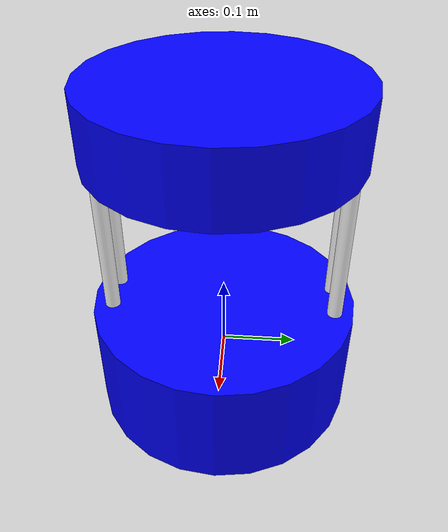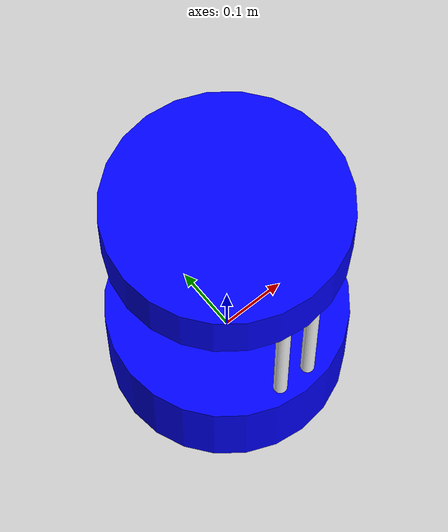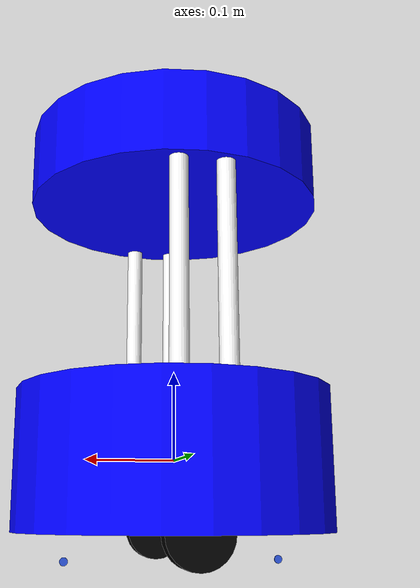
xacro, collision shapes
<?xml version="1.0"?>
<robot name="barista_robot" xmlns:xacro="http://ros.org/wiki/xacro">

<!-- Created with Liquid Technologies Online Tools 1.0 (https://www.liquid-technologies.com) -->

<!-- Include macro -->
<xacro:include filename="$(find barista_robot_description)/xacro/wheel.xacro" />
<xacro:include filename="$(find barista_robot_description)/xacro/standoff.xacro" />
<xacro:include filename="$(find barista_robot_description)/xacro/cup_holder_tray.xacro" />

<!-- Define the argument for including the laser -->
<xacro:arg name="include_laser" default="true" />
<xacro:arg name="robot_name" default="barista" />

<xacro:property name="robot_name" value="$(arg robot_name)"/>
<xacro:property name="robot_material" value="BlueMaterial"/>

<material name="BlueMaterial">
    <color rgba="0 0 1 1"/>
</material>
<material name="RedMaterial">
    <color rgba="1 0 0 1"/>
</material>

<xacro:property name="chassis_material" value="Gazebo/Blue"/>

<!-- Check if the robot is Rick and set color to Blue -->
<xacro:if value="${robot_name == 'rick'}">
  <xacro:property name="chassis_material" value="Gazebo/Blue"/>
  <xacro:property name="robot_material" value="BlueMaterial"/>
</xacro:if>

<!-- Check if the robot is Morty and set color to Red -->
<xacro:if value="${robot_name == 'morty'}">
  <xacro:property name="chassis_material" value="Gazebo/Red"/>
  <xacro:property name="robot_material" value="RedMaterial"/>
</xacro:if>

<!-- Lidar Sensor Macro Definition -->
<xacro:macro name="laser_scanner">
    <!-- Lidar plugin -->
    <gazebo reference="lidar">
        <material>Gazebo/Black</material>
        <sensor name="${robot_name}_sensor_ray" type="ray">
            <pose>0 0 0 0 0 0</pose>
            <ray>
                <scan>
                    <horizontal>
                        <samples>200</samples>
                        <resolution>1.0</resolution>
                        <min_angle>-3.14</min_angle>
                        <max_angle>3.14</max_angle>
                    </horizontal>
                </scan>
                <range>
                    <min>0.025</min>
                    <max>5.0</max>
                </range>
            </ray>
            <always_on>true</always_on>
            <visualize>true</visualize>
            <update_rate>100.0</update_rate>
            <plugin name="${robot_name}_laser" filename="libgazebo_ros_ray_sensor.so">
                <ros>
                    <namespace>${robot_name}</namespace>
                    <remapping>~/out:=/${robot_name}/scan</remapping>
                </ros>
                <frame_name>${robot_name}/base_link</frame_name>
                <output_type>sensor_msgs/LaserScan</output_type>
            </plugin>
        </sensor>
    </gazebo>
</xacro:macro>

<!-- Conditional inclusion of the laser scanner -->
<xacro:if value="$(arg include_laser)">
    <xacro:laser_scanner />
</xacro:if>

  <material name="black">
    <color rgba="0.0 0.0 0.0 1" />
  </material>

  <material name="white">
    <color rgba="1.0 1.0 1.0 1" />
  </material>

  <material name="blue_box">
    <color rgba="0.088656 0.428691 0.491021 1" />
  </material>

  <link name="base_link">
  </link>

  <!-- Body -->

  <link name="chassis">
    <visual>
      <geometry>
        <cylinder length="0.155" radius="0.178" />
      </geometry>
      <material name="${robot_material}" />
    </visual>
    <collision>
      <geometry>
        <cylinder length="0.155" radius="0.178" />
      </geometry>
    </collision>
    <inertial>
      <origin xyz="0 0 0" rpy="0 0 0" />
      <mass value="0.42857142857142855" />
      <inertia ixx="0.00425275" ixy="0.0" ixz="0.0" iyy="0.00425275" iyz="0.0" izz="0.00678942857142857" />
    </inertial>
  </link>

  <joint name="base_link_joint" type="fixed">
    <origin rpy="0 0 0" xyz="0 0 0" />
    <parent link="base_link" />
    <child link="chassis" />
  </joint>

  <gazebo reference="chassis">
      <material>${chassis_material}</material>
  </gazebo>

      <!-- Lidar Sensor -->
    <link name="lidar">
        <visual>
            <origin rpy="0 0 0" xyz="0.0 0 -0.05" />
            <geometry>
                <mesh filename="package://barista_robot_description/meshes/hokuyo_urg_04lx.dae"/>
            </geometry>
        </visual>
    </link>

    <joint name="lidar_joint" type="fixed">
        <origin rpy="0 0 0" xyz="-0.05 0 0.125" />
        <parent link="chassis" />
        <child link="lidar" />
    </joint>

  <!-- Front standoffs -->
  <xacro:standoff name="front_right_standoff" />

  <joint name="front_right_standoff_joint" type="fixed">
    <origin rpy="0 0 0" xyz="0.025 -0.15 0.1875" />
    <parent link="chassis" />
    <child link="front_right_standoff" />
  </joint>

  <xacro:standoff name="front_left_standoff" />

  <joint name="front_left_standoff_joint" type="fixed">
    <origin rpy="0 0 0" xyz="0.025 0.15 0.1875" />
    <parent link="chassis" />
    <child link="front_left_standoff" />
  </joint>

  <!-- Back standoffs -->

  <xacro:standoff name="back_right_standoff" />

  <joint name="back_right_standoff_joint" type="fixed">
    <origin rpy="0 0 0" xyz="-0.025 -0.15 0.1875" />
    <parent link="chassis" />
    <child link="back_right_standoff" />
  </joint>

  <xacro:standoff name="back_left_standoff" />

  <joint name="back_left_standoff_joint" type="fixed">
    <origin rpy="0 0 0" xyz="-0.025 0.15 0.1875" />
    <parent link="chassis" />
    <child link="back_left_standoff" />
  </joint>

  <!-- Cup holder tray -->

  <xacro:cup_holder_tray name="cup_holder" />

  <joint name="cup_holder_joint" type="fixed">
    <origin rpy="0 0 0" xyz="0.0 0.0 0.3425" />
    <parent link="chassis" />
    <child link="cup_holder" />
  </joint>

  <gazebo reference="cup_holder">
       <material>${chassis_material}</material>
  </gazebo>

  <!-- Wheel Left -->

  <xacro:wheel prefix="left" />

  <gazebo reference="left_wheel">
    <kp>1000000000000000000000000000.0</kp>
    <kd>1000000000000000000000000000.0</kd>
    <mu1>1.0</mu1>
    <mu2>1.0</mu2>
    <material>Gazebo/Black</material>
  </gazebo>

  <joint name="joint_left_wheel" type="continuous">
    <origin rpy="0 0 0" xyz="0 0.12 -0.0775" />
    <child link="left_wheel" />
    <parent link="chassis" />
    <axis rpy="0 0 0" xyz="0 1 0" />
    <limit effort="10000" velocity="1000" />
    <joint_properties damping="1.0" friction="1.0" />
  </joint>

  <!-- Wheel Right -->

  <xacro:wheel prefix="right" />

  <gazebo reference="right_wheel">
    <kp>1000000000000000000000000000.0</kp>
    <kd>1000000000000000000000000000.0</kd>
    <mu1>1.0</mu1>
    <mu2>1.0</mu2>
    <material>Gazebo/Black</material>
  </gazebo>

  <joint name="joint_right_wheel" type="continuous">
    <origin rpy="0 0 0" xyz="0 -0.12 -0.0775" />
    <child link="right_wheel" />
    <parent link="chassis" />
    <axis rpy="0 0 0" xyz="0 1 0" />
    <limit effort="10000" velocity="1000" />
    <joint_properties damping="1.0" friction="1.0" />
  </joint>

  <!-- Caster Wheel Front -->

  <link name="front_yaw_link">
    <visual>
      <origin rpy="0 1.5707 1.5707" xyz="0 0 0" />
      <geometry>
        <cylinder length="0.001" radius="0.0045000000000000005"/>
      </geometry>
      <material name="blue" />
    </visual>

    <collision>
      <origin rpy="0 1.5707 1.5707" xyz="0 0 0" />
      <geometry>
        <cylinder length="0.001" radius="0.0045000000000000005"/>
      </geometry>
    </collision>

    <inertial>
          <origin rpy="0 1.5707 1.5707" xyz="0 0 0"/>
          <mass value="0.001"/>
          <inertia ixx="5.145833333333334e-09" ixy="0" ixz="0" iyy="5.145833333333334e-09" iyz="0" izz="1.0125000000000003e-08"/>
    </inertial>
  </link>

  <gazebo reference="front_yaw_link">
        <material>Gazebo/Blue</material>
  </gazebo>

  <joint name="front_yaw_joint" type="continuous">
    <origin rpy="0 0 0" xyz="0.12 0 -0.1082" />
    <parent link="chassis" />
    <child link="front_yaw_link" />
    <axis xyz="0 0 1" />
    <limit effort="1000.0" velocity="100.0" />
    <dynamics damping="0.0" friction="0.1" />
  </joint>

  <link name="front_roll_link">
     <visual>
      <origin rpy="0 1.5707 1.5707" xyz="0 0 0" />
      <geometry>
        <cylinder length="0.001" radius="0.0045000000000000005"/>
      </geometry>
      <material name="blue" />
    </visual>

    <collision>
      <origin rpy="0 1.5707 1.5707" xyz="0 0 0" />
      <geometry>
        <cylinder length="0.001" radius="0.0045000000000000005"/>
      </geometry>
    </collision>

    <inertial>
          <origin rpy="0 1.5707 1.5707" xyz="0 0 0"/>
          <mass value="0.001"/>
          <inertia ixx="5.145833333333334e-09" ixy="0" ixz="0" iyy="5.145833333333334e-09" iyz="0" izz="1.0125000000000003e-08"/>
    </inertial>
  </link>

  <gazebo reference="front_roll_link">
        <material>Gazebo/Red</material>
  </gazebo>

  <joint name="front_roll_joint" type="continuous">
    <origin rpy="0 0 0" xyz="0 0 0" />
    <parent link="front_yaw_link" />
    <child link="front_roll_link" />
    <axis xyz="1 0 0" />
    <limit effort="1000.0" velocity="100.0" />
    <dynamics damping="0.0" friction="0.1" />
  </joint>

  <link name="front_pitch_link">
     <visual>
      <origin rpy="0 1.5707 1.5707" xyz="0 0 0" />
      <geometry>
        <cylinder length="0.001" radius="0.0045000000000000005"/>
      </geometry>
      <material name="blue" />
    </visual>

    <collision>
      <origin rpy="0 1.5707 1.5707" xyz="0 0 0" />
      <geometry>
        <cylinder length="0.001" radius="0.0045000000000000005"/>
      </geometry>
    </collision>

    <inertial>
          <origin rpy="0 1.5707 1.5707" xyz="0 0 0"/>
          <mass value="0.001"/>
          <inertia ixx="5.145833333333334e-09" ixy="0" ixz="0" iyy="5.145833333333334e-09" iyz="0" izz="1.0125000000000003e-08"/>
    </inertial>
  </link>

  <gazebo reference="front_pitch_link">
    <kp>1000000000000000000000000000.0</kp>
    <kd>1000000000000000000000000000.0</kd>
    <mu1>0.001</mu1>
    <mu2>0.001</mu2>
    <material>Gazebo/Purple</material>
  </gazebo>

  <joint name="front_pitch_joint" type="continuous">
    <origin rpy="0 0 0" xyz="0 0 0" />
    <parent link="front_roll_link" />
    <child link="front_pitch_link" />
    <axis xyz="0 1 0" />
    <limit effort="1000.0" velocity="100.0" />
    <dynamics damping="0.0" friction="0.1" />
  </joint>

  <!-- Caster Wheel Back -->

  <link name="back_yaw_link">
     <visual>
      <origin rpy="0 1.5707 1.5707" xyz="0 0 0" />
      <geometry>
        <cylinder length="0.001" radius="0.0045000000000000005"/>
      </geometry>
      <material name="blue" />
    </visual>

    <collision>
      <origin rpy="0 1.5707 1.5707" xyz="0 0 0" />
      <geometry>
        <cylinder length="0.001" radius="0.0045000000000000005"/>
      </geometry>
    </collision>

    <inertial>
          <origin rpy="0 1.5707 1.5707" xyz="0 0 0"/>
          <mass value="0.001"/>
          <inertia ixx="5.145833333333334e-09" ixy="0" ixz="0" iyy="5.145833333333334e-09" iyz="0" izz="1.0125000000000003e-08"/>
    </inertial>
  </link>

  <gazebo reference="back_yaw_link">
        <material>Gazebo/Blue</material>
  </gazebo>

  <joint name="back_yaw_joint" type="continuous">
    <origin rpy="0 0 0" xyz="-0.12 0 -0.1082" />
    <parent link="chassis" />
    <child link="back_yaw_link" />
    <axis xyz="0 0 1" />
    <limit effort="1000.0" velocity="100.0" />
    <dynamics damping="0.0" friction="0.1" />
  </joint>

  <link name="back_roll_link">
     <visual>
      <origin rpy="0 1.5707 1.5707" xyz="0 0 0" />
      <geometry>
        <cylinder length="0.001" radius="0.0045000000000000005"/>
      </geometry>
      <material name="blue" />
    </visual>

    <collision>
      <origin rpy="0 1.5707 1.5707" xyz="0 0 0" />
      <geometry>
        <cylinder length="0.001" radius="0.0045000000000000005"/>
      </geometry>
    </collision>

    <inertial>
          <origin rpy="0 1.5707 1.5707" xyz="0 0 0"/>
          <mass value="0.001"/>
          <inertia ixx="5.145833333333334e-09" ixy="0" ixz="0" iyy="5.145833333333334e-09" iyz="0" izz="1.0125000000000003e-08"/>
    </inertial>
  </link>

  <gazebo reference="back_roll_link">
        <material>Gazebo/Red</material>
  </gazebo>

  <joint name="back_roll_joint" type="continuous">
    <origin rpy="0 0 0" xyz="0 0 0" />
    <parent link="back_yaw_link" />
    <child link="back_roll_link" />
    <axis xyz="1 0 0" />
    <limit effort="1000.0" velocity="100.0" />
    <dynamics damping="0.0" friction="0.1" />
  </joint>

  <link name="back_pitch_link">
     <visual>
      <origin rpy="0 1.5707 1.5707" xyz="0 0 0" />
      <geometry>
        <cylinder length="0.001" radius="0.0045000000000000005"/>
      </geometry>
      <material name="blue" />
    </visual>

    <collision>
      <origin rpy="0 1.5707 1.5707" xyz="0 0 0"/>
      <geometry>
        <cylinder length="0.001" radius="0.0045000000000000005"/>
      </geometry>
    </collision>

    <inertial>
          <origin rpy="0 1.5707 1.5707" xyz="0 0 0"/>
          <mass value="0.001"/>
          <inertia ixx="5.145833333333334e-09" ixy="0" ixz="0" iyy="5.145833333333334e-09" iyz="0" izz="1.0125000000000003e-08"/>
    </inertial>
  </link>

  <gazebo reference="back_pitch_link">
    <kp>1000000000000000000000000000.0</kp>
    <kd>1000000000000000000000000000.0</kd>
    <mu1>0.001</mu1>
    <mu2>0.001</mu2>
    <material>Gazebo/Yellow</material>
  </gazebo>

  <joint name="back_pitch_joint" type="continuous">
    <origin rpy="0 0 0" xyz="0 0 0" />
    <parent link="back_roll_link" />
    <child link="back_pitch_link" />
    <axis xyz="0 1 0" />
    <limit effort="1000.0" velocity="100.0" />
    <dynamics damping="0.0" friction="0.1" />
  </joint>

  <!-- PLUGINS -->

  <!-- JOINT PUBLISHER -->
  <gazebo>
    <plugin name="robot_joint_state" filename="libgazebo_ros_joint_state_publisher.so">

      <ros>
            <namespace>${robot_name}</namespace>
            <remapping>~/out:=/joint_states</remapping>
      </ros>

      <update_rate>30</update_rate>

      <joint_name>joint_left_wheel</joint_name>
      <joint_name>joint_right_wheel</joint_name>
      <joint_name>front_yaw_joint</joint_name>
      <joint_name>back_yaw_joint</joint_name>
      <joint_name>front_roll_joint</joint_name>
      <joint_name>back_roll_joint</joint_name>
      <joint_name>front_pitch_joint</joint_name>
      <joint_name>back_pitch_joint</joint_name>

    </plugin>
  </gazebo>

   <!-- Differential drive -->
  <gazebo>
    <plugin filename="libgazebo_ros_diff_drive.so" name="differential_drive_controller">

      <!-- Topic to receive geometry_msgs/Twist message commands, defaults to `cmd_vel` -->
      <ros>
            <namespace>${robot_name}</namespace>
            <remapping>~/cmd_vel:=cmd_vel</remapping>
      </ros>

      <!-- wheels -->
      <left_joint>joint_left_wheel</left_joint>
      <right_joint>joint_right_wheel</right_joint>

      <!-- kinematics -->
      <wheel_separation>0.24</wheel_separation>
      <wheel_diameter>0.0704</wheel_diameter>

      <!-- limits -->
      <max_wheel_torque>0.5</max_wheel_torque>
      <max_wheel_acceleration>2.0</max_wheel_acceleration>

      <!-- output -->
      <publish_odom>true</publish_odom>
      <publish_odom_tf>true</publish_odom_tf>

      <odometry_frame>${robot_name}/odom</odometry_frame>
      <robot_base_frame>${robot_name}/base_link</robot_base_frame>

    </plugin>
  </gazebo>

</robot>

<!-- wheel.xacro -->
<robot xmlns:xacro="http://ros.org/wiki/xacro">
    <xacro:macro name="wheel" params="prefix">
        <xacro:property name="wheel_radius" value="0.0352" />
        <xacro:property name="wheel_width" value="0.0206" />

        <link name="${prefix}_wheel">
            <visual>
            <origin rpy="0 1.5707 1.5707" xyz="0 0 0"/>
                <geometry>
                    <cylinder length="${wheel_width}" radius="${wheel_radius}" />
                </geometry>
                <material name="black" />
            </visual>
            <collision>
            <origin rpy="0 1.5707 1.5707" xyz="0 0 0"/>
                <geometry>
                    <cylinder length="${wheel_width}" radius="${wheel_radius}" />
                </geometry>
            </collision>
            <inertial>
                <origin rpy="0 1.5707 1.5707" xyz="0 0 0"/>
                <mass value="0.42857142857142855" />
                <inertia ixx="0.00014790999999999998" ixy="0.0" ixz="0.0" iyy="0.00014790999999999998" iyz="0.0" izz="0.0002655085714285714" />
            </inertial>
        </link>
    </xacro:macro>
</robot>

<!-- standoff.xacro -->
<robot xmlns:xacro="http://ros.org/wiki/xacro">

  <xacro:macro name="standoff" params="name">
    <xacro:property name="standoff_length" value="0.22" />
    <xacro:property name="standoff_radius" value="0.01" />

    <link name="${name}">
      <visual>
        <geometry>
          <cylinder length="${standoff_length}" radius="${standoff_radius}" />
        </geometry>
        <material name="white" />
      </visual>
      <collision>
        <geometry>
          <cylinder length="${standoff_length}" radius="${standoff_radius}" />
        </geometry>
      </collision>
      <inertial>
        <origin xyz="0 0 0" rpy="0 0 0" />
        <mass value="0.42857142857142855" />
        <inertia ixx="0.0017392857142857143" ixy="0.0" ixz="0.0" iyy="0.0017392857142857143" iyz="0.0" izz="2.1428571428571428e-05" />
      </inertial>
    </link>
  </xacro:macro>

</robot>

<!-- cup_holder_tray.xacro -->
<robot xmlns:xacro="http://ros.org/wiki/xacro">

  <xacro:macro name="cup_holder_tray" params="name">
    <xacro:property name="tray_length" value="0.09" />
    <xacro:property name="tray_radius" value="0.17" />

    <link name="${name}">
      <visual>
        <geometry>
          <cylinder length="${tray_length}" radius="${tray_radius}" />
        </geometry>
        <material name="${robot_material}" />
      </visual>
      <collision>
        <geometry>
          <cylinder length="${tray_length}" radius="${tray_radius}" />
        </geometry>
      </collision>
      <inertial>
        <origin xyz="0 0 0" rpy="0 0 0" />
        <mass value="0.42857142857142855" />
        <inertia ixx="0.003385714285714286" ixy="0.0" ixz="0.0" iyy="0.003385714285714286" iyz="0.0" izz="0.006192857142857144" />
      </inertial>
    </link>
  </xacro:macro>

</robot>
